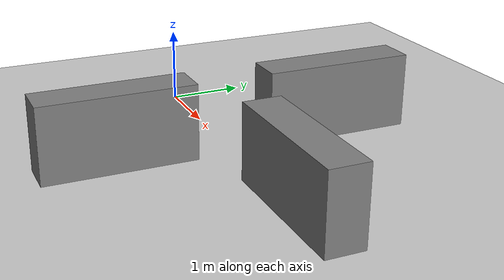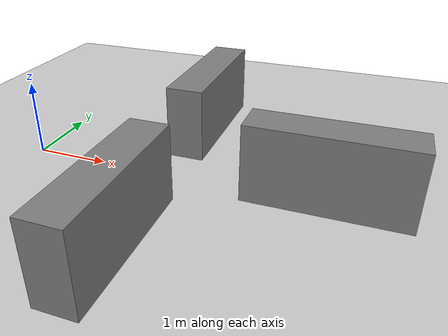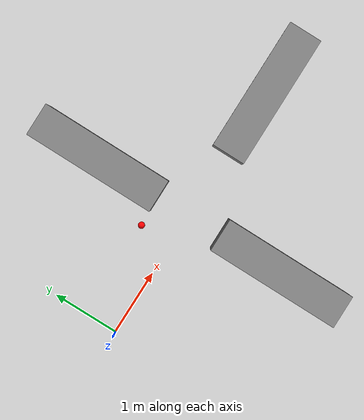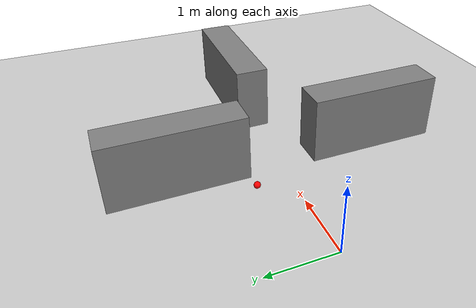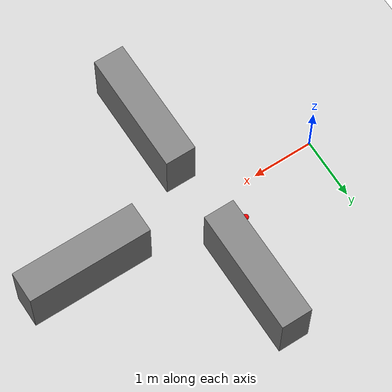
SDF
<?xml version="1.0" ?>
<sdf version="1.5">
  <world name="default">
    <!-- Light source -->
    <include>
      <uri>model://sun</uri>
    </include>
    <!-- Ground plane -->
    <include>
      <uri>model://ground_plane</uri>
    </include>

    <!-- 3 WAREHOUSE SHELVES (RECTANGULAR BOXES) -->
    <!-- Shelf 1 -->
    <model name="shelf_1">
      <static>true</static>
      <link name="link">
        <pose>2.0 1.5 0.5 0 0 0</pose>
        <collision name="collision">
          <geometry><box><size>0.5 2.0 1.0</size></box></geometry>
        </collision>
        <visual name="visual">
          <geometry><box><size>0.5 2.0 1.0</size></box></geometry>
          <material><ambient>0.5 0.5 0.5 1</ambient></material>
        </visual>
      </link>
    </model>

    <!-- Shelf 2 -->
    <model name="shelf_2">
      <static>true</static>
      <link name="link">
        <pose>2.0 -1.5 0.5 0 0 0</pose>
        <collision name="collision">
          <geometry><box><size>0.5 2.0 1.0</size></box></geometry>
        </collision>
        <visual name="visual">
          <geometry><box><size>0.5 2.0 1.0</size></box></geometry>
          <material><ambient>0.5 0.5 0.5 1</ambient></material>
        </visual>
      </link>
    </model>

    <!-- Shelf 3 -->
    <model name="shelf_3">
      <static>true</static>
      <link name="link">
        <pose>4.0 0.0 0.5 0 0 0</pose>
        <collision name="collision">
          <geometry><box><size>2.0 0.5 1.0</size></box></geometry>
        </collision>
        <visual name="visual">
          <geometry><box><size>2.0 0.5 1.0</size></box></geometry>
          <material><ambient>0.5 0.5 0.5 1</ambient></material>
        </visual>
      </link>
    </model>

    <!-- Target Object: Small red sphere for picking up -->
    <model name='red_target_ball'>
      <pose>1.5 0.5 0.05 0 0 0</pose> <!-- Placed in an open space within the robot's reach -->
      <link name='link'>
        <inertial>
          <mass>0.1</mass>
          <inertia>
            <ixx>0.0001</ixx>
            <ixy>0</ixy>
            <ixz>0</ixz>
            <iyy>0.0001</iyy>
            <iyz>0</iyz>
            <izz>0.0001</izz>
          </inertia>
        </inertial>
        <collision name='collision'>
          <geometry>
            <sphere><radius>0.05</radius></sphere> <!-- Radius 5cm -> Diameter 10cm -->
          </geometry>
        </collision>
        <visual name='visual'>
          <geometry>
            <sphere><radius>0.05</radius></sphere>
          </geometry>
          <material>
            <!-- Vibrant bright red color for Gazebo rendering -->
            <ambient>1 0 0 1</ambient>
            <diffuse>1 0 0 1</diffuse>
            <specular>0.1 0.1 0.1 1</specular>
          </material>
        </visual>
      </link>
    </model>
  </world>
</sdf>
